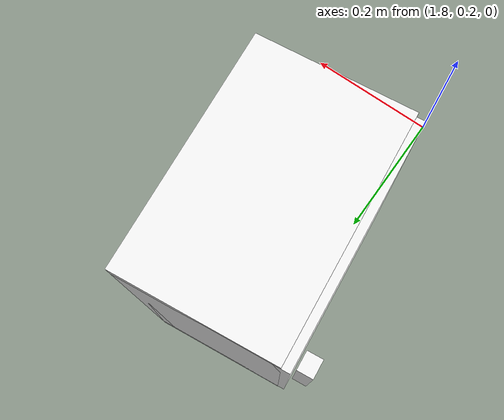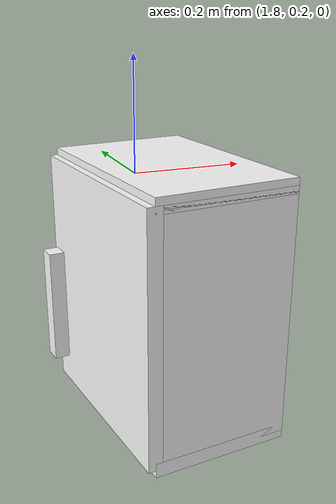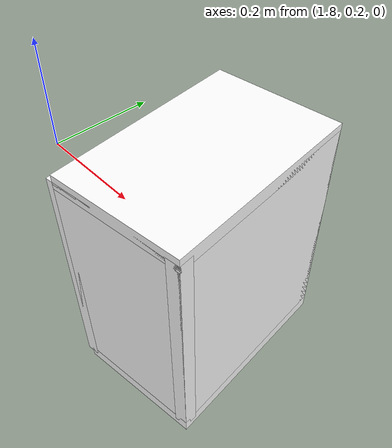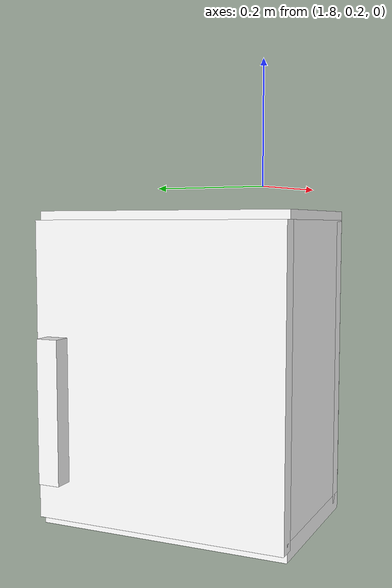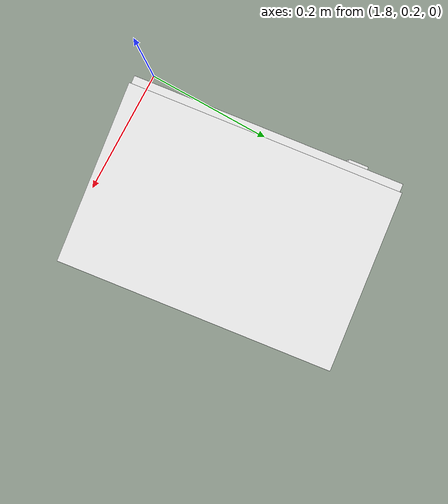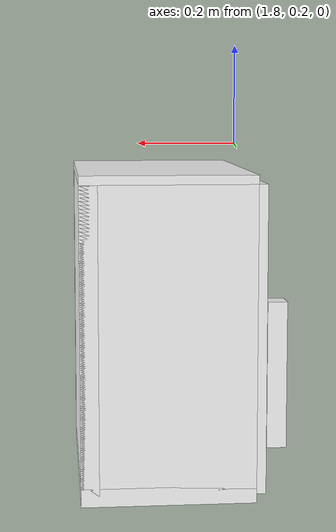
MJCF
<mujoco model="cabinet">
    <compiler angle="radian" eulerseq='zxy' />
    <option gravity = "0 0 0" />
    <option>
        <flag contact = "disable"/>
    </option>
    <statistic	extent="1.0" center="0.0 0.0 0.0"/>
    <visual>
        <map fogstart="3" fogend="5" force="0.1" znear=" 0.100000 " zfar=" 12.000000 "/>
    </visual>
    <size njmax="500" nconmax="100" />
    <actuator>
        <velocity joint="bottom_left_hinge" name="viva_revolution" kv='10'></velocity>
    </actuator>
    <asset>
        <texture builtin="flat" name="tabletex" height="32" width="32" rgb1="1 1 1" type="cube"></texture>
        <texture builtin="flat" name="objtex" height="32" width="32" rgb1="1 1 1" type="cube"></texture>
        <texture builtin="flat" name="handletex" height="32" width="32" rgb1="1 1 1" type="cube"></texture>
        <texture builtin="flat" name="wallpaper" height="32" width="32" rgb1="1 1 1" type="cube"></texture>
        <material name="geomTable" shininess="0.03" specular="0.75" texture="tabletex"></material>
        <material name="geomObj" shininess="0.03" specular="0.75" texture="objtex"></material>
        <material name="geomHandle" shininess="0.03" specular="0.75" texture="handletex"></material>
        <material name="bg" shininess="0.03" specular="0.75" texture="wallpaper"></material>
    </asset>
    <worldbody>
            <body name="cabinet_bottom" pos= " 1.950754 0.418996 -0.609698 "  quat= " -0.058368 0.000000 0.000000 0.998295" >
                <inertial pos="0 0 0" mass="1" diaginertia="1 1 1" />
                <geom size= " 0.157474 0.241008 0.016447 "  type="box" material="geomObj" name="b"/>
                <body name="cabinet_left" pos= " 0.000000 -0.224561 0.278463 " >
                    <inertial pos="0 0 0" mass="1" diaginertia="1 1 1" />
                    <geom size= " 0.157474 0.016447 0.278463 "  type="box" material="geomObj" name="c" />
                </body>
                <body name="cabinet_right" pos= " 0.000000 0.224561 0.278463 " >
                    <inertial pos="0 0 0" mass="1" diaginertia="1 1 1" />
                    <geom size= " 0.157474 0.016447 0.278463 "  type="box" material="geomObj" name="d" />
                </body>
                <body name="cabinet_top" pos= " 0.000000 0.000000 0.556925 " >
                    <inertial pos="0 0 0" mass="1" diaginertia="1 1 1" />
                    <geom size= " 0.157474 0.241008 0.016447 "  type="box" material="geomObj" name="e"/>
                </body>
                <body name="cabinet_back" pos= " -0.141027 0.000000 0.278463 "  >
                    <inertial pos="0 0 0" mass="1" diaginertia="1 1 1" />
                    <geom size= " 0.016447 0.241008 0.278463 "  type="box" material="geomObj" name="f" />
                </body>
                <body name="cabinet_left_hinge" pos= " 0.157474 0.241008 0.278463 " >
                    <inertial pos= " 0.000000 -0.241008 0.000000 "  mass="1" diaginertia="1 1 1" />
                    <joint name="bottom_left_hinge" type="hinge" pos="0 0 0" axis="0 0 1" limited="true" range= "0 2.3"  />
                    <geom size= " 0.016447 0.241008 0.278463 "  pos= " 0.000000 -0.241008 0.000000 "  type="box" material="geomObj" name="g"/>
                    <body name="handle_link" pos= " 0.039368 -0.434744 -0.067754 " >
                        <inertial pos="0 0 0" mass="1" diaginertia="1 1 1" />
                        <geom size= " 0.017717 0.020938 0.133544 "  type="box" material="geomHandle" name="h"/>
                    </body>
                </body>
            </body>
        <body name="external_camera_body_0" pos="0.0 0 0.00">
            <camera euler="-1.57 1.57 0.0" fovy=" 54.280851 " name="external_camera_0" pos="0.0 0 0"></camera>
            <inertial pos= " 0.00 0.0 0.000000 " mass="1" diaginertia="1 1 1" />
            <joint name="cam_j" pos="0.0 0 0" axis = "1 0 0" type="free" />
        </body>
    </worldbody>
</mujoco>
